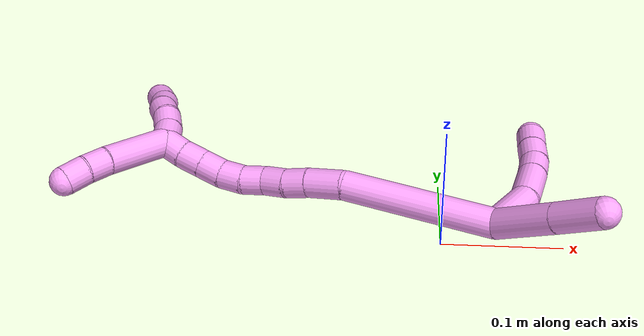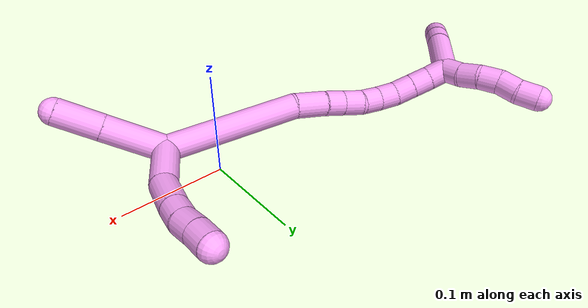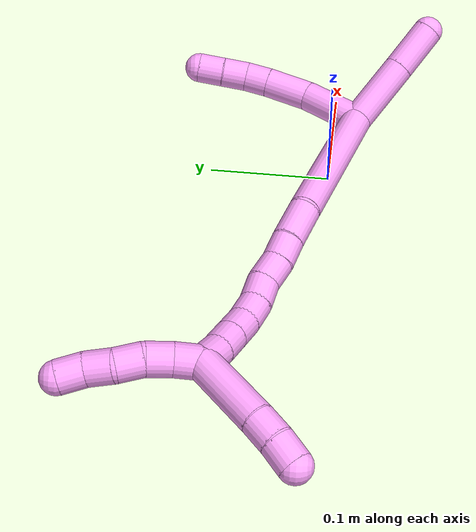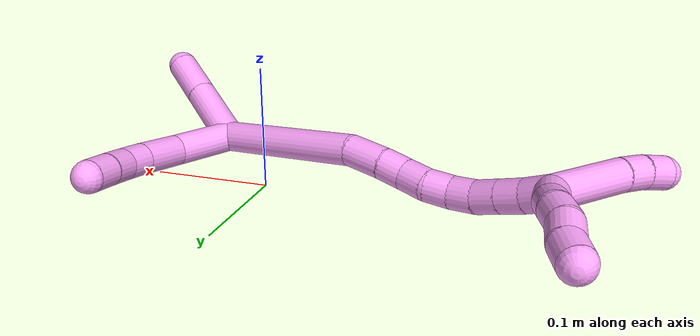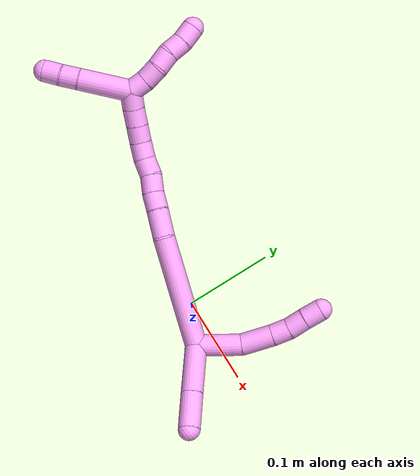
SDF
<sdf version="1.7">
 <world name="default">
  <model name="4">
   <static>0</static>
   <link name="4">
    <collision name="collision-cylinder-e_1_2_8">
     <pose>0.015464 0.000236 0.0204 -0.011568 0.648607 -0.003889</pose>
     <geometry><cylinder><radius>0.0125</radius><length>0.0512</length></cylinder></geometry>
     <surface>
      <friction><ode><mu>1.16</mu><mu2>1.16</mu2><slip1>0</slip1><slip2>0</slip2></ode></friction>
      <contact><ode><kp>1e+06</kp><kd>1</kd><max_vel>0</max_vel><min_depth>0.001</min_depth></ode></contact>
     </surface>
    </collision>
    <visual name="visual-cylinder-e_1_2_8">
     <pose>0.015464 0.000236 0.0204 -0.011568 0.648607 -0.003889</pose>
     <geometry><cylinder><radius>0.0125</radius><length>0.0512</length></cylinder></geometry>
     <material><ambient>1 0.65098 0.996078 1</ambient></material>
    </visual>
    <collision name="collision-cylinder-e_2_8_9">
     <pose>0.037196 -0.001228 0.058074 0.098095 0.3465 0.01718</pose>
     <geometry><cylinder><radius>0.0125</radius><length>0.03691</length></cylinder></geometry>
     <surface>
      <friction><ode><mu>1.16</mu><mu2>1.16</mu2><slip1>0</slip1><slip2>0</slip2></ode></friction>
      <contact><ode><kp>1e+06</kp><kd>1</kd><max_vel>0</max_vel><min_depth>0.001</min_depth></ode></contact>
     </surface>
    </collision>
    <visual name="visual-cylinder-e_2_8_9">
     <pose>0.037196 -0.001228 0.058074 0.098095 0.3465 0.01718</pose>
     <geometry><cylinder><radius>0.0125</radius><length>0.03691</length></cylinder></geometry>
     <material><ambient>1 0.65098 0.996078 1</ambient></material>
    </visual>
    <collision name="collision-cylinder-e_3_9_10">
     <pose>0.046134 -0.003703 0.084975 0.080348 0.269748 0.010909</pose>
     <geometry><cylinder><radius>0.0125</radius><length>0.02004</length></cylinder></geometry>
     <surface>
      <friction><ode><mu>1.16</mu><mu2>1.16</mu2><slip1>0</slip1><slip2>0</slip2></ode></friction>
      <contact><ode><kp>1e+06</kp><kd>1</kd><max_vel>0</max_vel><min_depth>0.001</min_depth></ode></contact>
     </surface>
    </collision>
    <visual name="visual-cylinder-e_3_9_10">
     <pose>0.046134 -0.003703 0.084975 0.080348 0.269748 0.010909</pose>
     <geometry><cylinder><radius>0.0125</radius><length>0.02004</length></cylinder></geometry>
     <material><ambient>1 0.65098 0.996078 1</ambient></material>
    </visual>
    <collision name="collision-cylinder-e_4_10_11">
     <pose>0.049589 -0.005746 0.104989 0.121471 0.074904 0.004557</pose>
     <geometry><cylinder><radius>0.0125</radius><length>0.020988</length></cylinder></geometry>
     <surface>
      <friction><ode><mu>1.16</mu><mu2>1.16</mu2><slip1>0</slip1><slip2>0</slip2></ode></friction>
      <contact><ode><kp>1e+06</kp><kd>1</kd><max_vel>0</max_vel><min_depth>0.001</min_depth></ode></contact>
     </surface>
    </collision>
    <visual name="visual-cylinder-e_4_10_11">
     <pose>0.049589 -0.005746 0.104989 0.121471 0.074904 0.004557</pose>
     <geometry><cylinder><radius>0.0125</radius><length>0.020988</length></cylinder></geometry>
     <material><ambient>1 0.65098 0.996078 1</ambient></material>
    </visual>
    <collision name="collision-cylinder-e_5_11_6">
     <pose>0.051736 -0.007846 0.125685 0.080462 0.130935 0.005278</pose>
     <geometry><cylinder><radius>0.0125</radius><length>0.020862</length></cylinder></geometry>
     <surface>
      <friction><ode><mu>1.16</mu><mu2>1.16</mu2><slip1>0</slip1><slip2>0</slip2></ode></friction>
      <contact><ode><kp>1e+06</kp><kd>1</kd><max_vel>0</max_vel><min_depth>0.001</min_depth></ode></contact>
     </surface>
    </collision>
    <visual name="visual-cylinder-e_5_11_6">
     <pose>0.051736 -0.007846 0.125685 0.080462 0.130935 0.005278</pose>
     <geometry><cylinder><radius>0.0125</radius><length>0.020862</length></cylinder></geometry>
     <material><ambient>1 0.65098 0.996078 1</ambient></material>
    </visual>
    <collision name="collision-cylinder-e_1_2_12">
     <pose>0.018193 -0.014692 -0.017331 2.4384 0.675174 1.52675</pose>
     <geometry><cylinder><radius>0.0125</radius><length>0.058213</length></cylinder></geometry>
     <surface>
      <friction><ode><mu>1.16</mu><mu2>1.16</mu2><slip1>0</slip1><slip2>0</slip2></ode></friction>
      <contact><ode><kp>1e+06</kp><kd>1</kd><max_vel>0</max_vel><min_depth>0.001</min_depth></ode></contact>
     </surface>
    </collision>
    <visual name="visual-cylinder-e_1_2_12">
     <pose>0.018193 -0.014692 -0.017331 2.4384 0.675174 1.52675</pose>
     <geometry><cylinder><radius>0.0125</radius><length>0.058213</length></cylinder></geometry>
     <material><ambient>1 0.65098 0.996078 1</ambient></material>
    </visual>
    <collision name="collision-cylinder-e_2_12_5">
     <pose>0.049465 -0.04011 -0.046926 2.42307 0.676449 1.50531</pose>
     <geometry><cylinder><radius>0.0125</radius><length>0.041787</length></cylinder></geometry>
     <surface>
      <friction><ode><mu>1.16</mu><mu2>1.16</mu2><slip1>0</slip1><slip2>0</slip2></ode></friction>
      <contact><ode><kp>1e+06</kp><kd>1</kd><max_vel>0</max_vel><min_depth>0.001</min_depth></ode></contact>
     </surface>
    </collision>
    <visual name="visual-cylinder-e_2_12_5">
     <pose>0.049465 -0.04011 -0.046926 2.42307 0.676449 1.50531</pose>
     <geometry><cylinder><radius>0.0125</radius><length>0.041787</length></cylinder></geometry>
     <material><ambient>1 0.65098 0.996078 1</ambient></material>
    </visual>
    <collision name="collision-cylinder-e_1_2_13">
     <pose>-0.059309 -0.000814 0.023282 0.034932 -1.19652 -0.023811</pose>
     <geometry><cylinder><radius>0.0125</radius><length>0.127441</length></cylinder></geometry>
     <surface>
      <friction><ode><mu>1.16</mu><mu2>1.16</mu2><slip1>0</slip1><slip2>0</slip2></ode></friction>
      <contact><ode><kp>1e+06</kp><kd>1</kd><max_vel>0</max_vel><min_depth>0.001</min_depth></ode></contact>
     </surface>
    </collision>
    <visual name="visual-cylinder-e_1_2_13">
     <pose>-0.059309 -0.000814 0.023282 0.034932 -1.19652 -0.023811</pose>
     <geometry><cylinder><radius>0.0125</radius><length>0.127441</length></cylinder></geometry>
     <material><ambient>1 0.65098 0.996078 1</ambient></material>
    </visual>
    <collision name="collision-cylinder-e_2_13_14">
     <pose>-0.132594 0.001747 0.052953 -0.485892 -1.09364 0.299484</pose>
     <geometry><cylinder><radius>0.0125</radius><length>0.031466</length></cylinder></geometry>
     <surface>
      <friction><ode><mu>1.16</mu><mu2>1.16</mu2><slip1>0</slip1><slip2>0</slip2></ode></friction>
      <contact><ode><kp>1e+06</kp><kd>1</kd><max_vel>0</max_vel><min_depth>0.001</min_depth></ode></contact>
     </surface>
    </collision>
    <visual name="visual-cylinder-e_2_13_14">
     <pose>-0.132594 0.001747 0.052953 -0.485892 -1.09364 0.299484</pose>
     <geometry><cylinder><radius>0.0125</radius><length>0.031466</length></cylinder></geometry>
     <material><ambient>1 0.65098 0.996078 1</ambient></material>
    </visual>
    <collision name="collision-cylinder-e_3_14_15">
     <pose>-0.155451 0.008125 0.063052 -0.680647 -1.07762 0.417212</pose>
     <geometry><cylinder><radius>0.0125</radius><length>0.020166</length></cylinder></geometry>
     <surface>
      <friction><ode><mu>1.16</mu><mu2>1.16</mu2><slip1>0</slip1><slip2>0</slip2></ode></friction>
      <contact><ode><kp>1e+06</kp><kd>1</kd><max_vel>0</max_vel><min_depth>0.001</min_depth></ode></contact>
     </surface>
    </collision>
    <visual name="visual-cylinder-e_3_14_15">
     <pose>-0.155451 0.008125 0.063052 -0.680647 -1.07762 0.417212</pose>
     <geometry><cylinder><radius>0.0125</radius><length>0.020166</length></cylinder></geometry>
     <material><ambient>1 0.65098 0.996078 1</ambient></material>
    </visual>
    <collision name="collision-cylinder-e_4_15_16">
     <pose>-0.173093 0.013364 0.071996 -0.403592 -0.994714 0.221217</pose>
     <geometry><cylinder><radius>0.0125</radius><length>0.020894</length></cylinder></geometry>
     <surface>
      <friction><ode><mu>1.16</mu><mu2>1.16</mu2><slip1>0</slip1><slip2>0</slip2></ode></friction>
      <contact><ode><kp>1e+06</kp><kd>1</kd><max_vel>0</max_vel><min_depth>0.001</min_depth></ode></contact>
     </surface>
    </collision>
    <visual name="visual-cylinder-e_4_15_16">
     <pose>-0.173093 0.013364 0.071996 -0.403592 -0.994714 0.221217</pose>
     <geometry><cylinder><radius>0.0125</radius><length>0.020894</length></cylinder></geometry>
     <material><ambient>1 0.65098 0.996078 1</ambient></material>
    </visual>
    <collision name="collision-cylinder-e_5_16_17">
     <pose>-0.191314 0.017328 0.079982 -0.560635 -1.23981 0.405341</pose>
     <geometry><cylinder><radius>0.0125</radius><length>0.020007</length></cylinder></geometry>
     <surface>
      <friction><ode><mu>1.16</mu><mu2>1.16</mu2><slip1>0</slip1><slip2>0</slip2></ode></friction>
      <contact><ode><kp>1e+06</kp><kd>1</kd><max_vel>0</max_vel><min_depth>0.001</min_depth></ode></contact>
     </surface>
    </collision>
    <visual name="visual-cylinder-e_5_16_17">
     <pose>-0.191314 0.017328 0.079982 -0.560635 -1.23981 0.405341</pose>
     <geometry><cylinder><radius>0.0125</radius><length>0.020007</length></cylinder></geometry>
     <material><ambient>1 0.65098 0.996078 1</ambient></material>
    </visual>
    <collision name="collision-cylinder-e_6_17_18">
     <pose>-0.209866 0.019113 0.086928 -0.01346 -1.13872 0.008615</pose>
     <geometry><cylinder><radius>0.0125</radius><length>0.020023</length></cylinder></geometry>
     <surface>
      <friction><ode><mu>1.16</mu><mu2>1.16</mu2><slip1>0</slip1><slip2>0</slip2></ode></friction>
      <contact><ode><kp>1e+06</kp><kd>1</kd><max_vel>0</max_vel><min_depth>0.001</min_depth></ode></contact>
     </surface>
    </collision>
    <visual name="visual-cylinder-e_6_17_18">
     <pose>-0.209866 0.019113 0.086928 -0.01346 -1.13872 0.008615</pose>
     <geometry><cylinder><radius>0.0125</radius><length>0.020023</length></cylinder></geometry>
     <material><ambient>1 0.65098 0.996078 1</ambient></material>
    </visual>
    <collision name="collision-cylinder-e_7_18_19">
     <pose>-0.227719 0.017191 0.095521 0.422362 -1.06736 -0.251995</pose>
     <geometry><cylinder><radius>0.0125</radius><length>0.020003</length></cylinder></geometry>
     <surface>
      <friction><ode><mu>1.16</mu><mu2>1.16</mu2><slip1>0</slip1><slip2>0</slip2></ode></friction>
      <contact><ode><kp>1e+06</kp><kd>1</kd><max_vel>0</max_vel><min_depth>0.001</min_depth></ode></contact>
     </surface>
    </collision>
    <visual name="visual-cylinder-e_7_18_19">
     <pose>-0.227719 0.017191 0.095521 0.422362 -1.06736 -0.251995</pose>
     <geometry><cylinder><radius>0.0125</radius><length>0.020003</length></cylinder></geometry>
     <material><ambient>1 0.65098 0.996078 1</ambient></material>
    </visual>
    <collision name="collision-cylinder-e_8_19_20">
     <pose>-0.245237 0.013204 0.10431 0.429331 -1.06713 -0.25617</pose>
     <geometry><cylinder><radius>0.0125</radius><length>0.02</length></cylinder></geometry>
     <surface>
      <friction><ode><mu>1.16</mu><mu2>1.16</mu2><slip1>0</slip1><slip2>0</slip2></ode></friction>
      <contact><ode><kp>1e+06</kp><kd>1</kd><max_vel>0</max_vel><min_depth>0.001</min_depth></ode></contact>
     </surface>
    </collision>
    <visual name="visual-cylinder-e_8_19_20">
     <pose>-0.245237 0.013204 0.10431 0.429331 -1.06713 -0.25617</pose>
     <geometry><cylinder><radius>0.0125</radius><length>0.02</length></cylinder></geometry>
     <material><ambient>1 0.65098 0.996078 1</ambient></material>
    </visual>
    <collision name="collision-cylinder-e_9_20_1">
     <pose>-0.262251 0.008253 0.113515 0.548314 -0.971103 -0.294662</pose>
     <geometry><cylinder><radius>0.0125</radius><length>0.02</length></cylinder></geometry>
     <surface>
      <friction><ode><mu>1.16</mu><mu2>1.16</mu2><slip1>0</slip1><slip2>0</slip2></ode></friction>
      <contact><ode><kp>1e+06</kp><kd>1</kd><max_vel>0</max_vel><min_depth>0.001</min_depth></ode></contact>
     </surface>
    </collision>
    <visual name="visual-cylinder-e_9_20_1">
     <pose>-0.262251 0.008253 0.113515 0.548314 -0.971103 -0.294662</pose>
     <geometry><cylinder><radius>0.0125</radius><length>0.02</length></cylinder></geometry>
     <material><ambient>1 0.65098 0.996078 1</ambient></material>
    </visual>
    <collision name="collision-cylinder-e_1_1_21">
     <pose>-0.293629 0.005373 0.099366 -3.13833 -0.883821 3.1347</pose>
     <geometry><cylinder><radius>0.0125</radius><length>0.059813</length></cylinder></geometry>
     <surface>
      <friction><ode><mu>1.16</mu><mu2>1.16</mu2><slip1>0</slip1><slip2>0</slip2></ode></friction>
      <contact><ode><kp>1e+06</kp><kd>1</kd><max_vel>0</max_vel><min_depth>0.001</min_depth></ode></contact>
     </surface>
    </collision>
    <visual name="visual-cylinder-e_1_1_21">
     <pose>-0.293629 0.005373 0.099366 -3.13833 -0.883821 3.1347</pose>
     <geometry><cylinder><radius>0.0125</radius><length>0.059813</length></cylinder></geometry>
     <material><ambient>1 0.65098 0.996078 1</ambient></material>
    </visual>
    <collision name="collision-cylinder-e_2_21_22">
     <pose>-0.324452 0.006403 0.074046 -2.99043 -0.875364 2.82073</pose>
     <geometry><cylinder><radius>0.0125</radius><length>0.020059</length></cylinder></geometry>
     <surface>
      <friction><ode><mu>1.16</mu><mu2>1.16</mu2><slip1>0</slip1><slip2>0</slip2></ode></friction>
      <contact><ode><kp>1e+06</kp><kd>1</kd><max_vel>0</max_vel><min_depth>0.001</min_depth></ode></contact>
     </surface>
    </collision>
    <visual name="visual-cylinder-e_2_21_22">
     <pose>-0.324452 0.006403 0.074046 -2.99043 -0.875364 2.82073</pose>
     <geometry><cylinder><radius>0.0125</radius><length>0.020059</length></cylinder></geometry>
     <material><ambient>1 0.65098 0.996078 1</ambient></material>
    </visual>
    <collision name="collision-cylinder-e_3_22_4">
     <pose>-0.339908 0.00959 0.061676 -2.78823 -0.879892 2.41652</pose>
     <geometry><cylinder><radius>0.0125</radius><length>0.020128</length></cylinder></geometry>
     <surface>
      <friction><ode><mu>1.16</mu><mu2>1.16</mu2><slip1>0</slip1><slip2>0</slip2></ode></friction>
      <contact><ode><kp>1e+06</kp><kd>1</kd><max_vel>0</max_vel><min_depth>0.001</min_depth></ode></contact>
     </surface>
    </collision>
    <visual name="visual-cylinder-e_3_22_4">
     <pose>-0.339908 0.00959 0.061676 -2.78823 -0.879892 2.41652</pose>
     <geometry><cylinder><radius>0.0125</radius><length>0.020128</length></cylinder></geometry>
     <material><ambient>1 0.65098 0.996078 1</ambient></material>
    </visual>
    <collision name="collision-cylinder-e_1_1_23">
     <pose>-0.270062 0.004835 0.128311 0.047694 0.044385 0.001059</pose>
     <geometry><cylinder><radius>0.0125</radius><length>0.02</length></cylinder></geometry>
     <surface>
      <friction><ode><mu>1.16</mu><mu2>1.16</mu2><slip1>0</slip1><slip2>0</slip2></ode></friction>
      <contact><ode><kp>1e+06</kp><kd>1</kd><max_vel>0</max_vel><min_depth>0.001</min_depth></ode></contact>
     </surface>
    </collision>
    <visual name="visual-cylinder-e_1_1_23">
     <pose>-0.270062 0.004835 0.128311 0.047694 0.044385 0.001059</pose>
     <geometry><cylinder><radius>0.0125</radius><length>0.02</length></cylinder></geometry>
     <material><ambient>1 0.65098 0.996078 1</ambient></material>
    </visual>
    <collision name="collision-cylinder-e_2_23_24">
     <pose>-0.271099 0.003035 0.14809 0.134284 -0.148612 -0.010011</pose>
     <geometry><cylinder><radius>0.0125</radius><length>0.02</length></cylinder></geometry>
     <surface>
      <friction><ode><mu>1.16</mu><mu2>1.16</mu2><slip1>0</slip1><slip2>0</slip2></ode></friction>
      <contact><ode><kp>1e+06</kp><kd>1</kd><max_vel>0</max_vel><min_depth>0.001</min_depth></ode></contact>
     </surface>
    </collision>
    <visual name="visual-cylinder-e_2_23_24">
     <pose>-0.271099 0.003035 0.14809 0.134284 -0.148612 -0.010011</pose>
     <geometry><cylinder><radius>0.0125</radius><length>0.02</length></cylinder></geometry>
     <material><ambient>1 0.65098 0.996078 1</ambient></material>
    </visual>
    <collision name="collision-cylinder-e_3_24_25">
     <pose>-0.275215 0.00251 0.167505 -0.082922 -0.266627 0.011127</pose>
     <geometry><cylinder><radius>0.0125</radius><length>0.02</length></cylinder></geometry>
     <surface>
      <friction><ode><mu>1.16</mu><mu2>1.16</mu2><slip1>0</slip1><slip2>0</slip2></ode></friction>
      <contact><ode><kp>1e+06</kp><kd>1</kd><max_vel>0</max_vel><min_depth>0.001</min_depth></ode></contact>
     </surface>
    </collision>
    <visual name="visual-cylinder-e_3_24_25">
     <pose>-0.275215 0.00251 0.167505 -0.082922 -0.266627 0.011127</pose>
     <geometry><cylinder><radius>0.0125</radius><length>0.02</length></cylinder></geometry>
     <material><ambient>1 0.65098 0.996078 1</ambient></material>
    </visual>
    <collision name="collision-cylinder-e_4_25_26">
     <pose>-0.278005 0.005497 0.186874 -0.220704 -0.015518 0.001719</pose>
     <geometry><cylinder><radius>0.0125</radius><length>0.02</length></cylinder></geometry>
     <surface>
      <friction><ode><mu>1.16</mu><mu2>1.16</mu2><slip1>0</slip1><slip2>0</slip2></ode></friction>
      <contact><ode><kp>1e+06</kp><kd>1</kd><max_vel>0</max_vel><min_depth>0.001</min_depth></ode></contact>
     </surface>
    </collision>
    <visual name="visual-cylinder-e_4_25_26">
     <pose>-0.278005 0.005497 0.186874 -0.220704 -0.015518 0.001719</pose>
     <geometry><cylinder><radius>0.0125</radius><length>0.02</length></cylinder></geometry>
     <material><ambient>1 0.65098 0.996078 1</ambient></material>
    </visual>
    <collision name="collision-cylinder-e_5_26_3">
     <pose>-0.280755 0.009443 0.206127 -0.182892 -0.262535 0.024213</pose>
     <geometry><cylinder><radius>0.0125</radius><length>0.02</length></cylinder></geometry>
     <surface>
      <friction><ode><mu>1.16</mu><mu2>1.16</mu2><slip1>0</slip1><slip2>0</slip2></ode></friction>
      <contact><ode><kp>1e+06</kp><kd>1</kd><max_vel>0</max_vel><min_depth>0.001</min_depth></ode></contact>
     </surface>
    </collision>
    <visual name="visual-cylinder-e_5_26_3">
     <pose>-0.280755 0.009443 0.206127 -0.182892 -0.262535 0.024213</pose>
     <geometry><cylinder><radius>0.0125</radius><length>0.02</length></cylinder></geometry>
     <material><ambient>1 0.65098 0.996078 1</ambient></material>
    </visual>
    <collision name="collision-sphere-3">
     <pose>-0.283351 0.011199 0.215623 0 -0 0</pose>
     <geometry><sphere><radius>0.0125</radius></sphere></geometry>
     <surface>
      <friction><ode><mu>1.16</mu><mu2>1.16</mu2><slip1>0</slip1><slip2>0</slip2></ode></friction>
      <contact><ode><kp>1e+06</kp><kd>1</kd><max_vel>0</max_vel><min_depth>0.001</min_depth></ode></contact>
     </surface>
    </collision>
    <visual name="visual-sphere-3">
     <pose>-0.283351 0.011199 0.215623 0 -0 0</pose>
     <geometry><sphere><radius>0.0125</radius></sphere></geometry>
     <material><ambient>1 0.65098 0.996078 1</ambient></material>
    </visual>
    <collision name="collision-sphere-26">
     <pose>-0.27816 0.007686 0.196631 0 -0 0</pose>
     <geometry><sphere><radius>0.0125</radius></sphere></geometry>
     <surface>
      <friction><ode><mu>1.16</mu><mu2>1.16</mu2><slip1>0</slip1><slip2>0</slip2></ode></friction>
      <contact><ode><kp>1e+06</kp><kd>1</kd><max_vel>0</max_vel><min_depth>0.001</min_depth></ode></contact>
     </surface>
    </collision>
    <visual name="visual-sphere-26">
     <pose>-0.27816 0.007686 0.196631 0 -0 0</pose>
     <geometry><sphere><radius>0.0125</radius></sphere></geometry>
     <material><ambient>1 0.65098 0.996078 1</ambient></material>
    </visual>
    <collision name="collision-sphere-25">
     <pose>-0.27785 0.003309 0.177118 0 -0 0</pose>
     <geometry><sphere><radius>0.0125</radius></sphere></geometry>
     <surface>
      <friction><ode><mu>1.16</mu><mu2>1.16</mu2><slip1>0</slip1><slip2>0</slip2></ode></friction>
      <contact><ode><kp>1e+06</kp><kd>1</kd><max_vel>0</max_vel><min_depth>0.001</min_depth></ode></contact>
     </surface>
    </collision>
    <visual name="visual-sphere-25">
     <pose>-0.27785 0.003309 0.177118 0 -0 0</pose>
     <geometry><sphere><radius>0.0125</radius></sphere></geometry>
     <material><ambient>1 0.65098 0.996078 1</ambient></material>
    </visual>
    <collision name="collision-sphere-24">
     <pose>-0.27258 0.001711 0.157891 0 -0 0</pose>
     <geometry><sphere><radius>0.0125</radius></sphere></geometry>
     <surface>
      <friction><ode><mu>1.16</mu><mu2>1.16</mu2><slip1>0</slip1><slip2>0</slip2></ode></friction>
      <contact><ode><kp>1e+06</kp><kd>1</kd><max_vel>0</max_vel><min_depth>0.001</min_depth></ode></contact>
     </surface>
    </collision>
    <visual name="visual-sphere-24">
     <pose>-0.27258 0.001711 0.157891 0 -0 0</pose>
     <geometry><sphere><radius>0.0125</radius></sphere></geometry>
     <material><ambient>1 0.65098 0.996078 1</ambient></material>
    </visual>
    <collision name="collision-sphere-23">
     <pose>-0.269619 0.004359 0.13829 0 -0 0</pose>
     <geometry><sphere><radius>0.0125</radius></sphere></geometry>
     <surface>
      <friction><ode><mu>1.16</mu><mu2>1.16</mu2><slip1>0</slip1><slip2>0</slip2></ode></friction>
      <contact><ode><kp>1e+06</kp><kd>1</kd><max_vel>0</max_vel><min_depth>0.001</min_depth></ode></contact>
     </surface>
    </collision>
    <visual name="visual-sphere-23">
     <pose>-0.269619 0.004359 0.13829 0 -0 0</pose>
     <geometry><sphere><radius>0.0125</radius></sphere></geometry>
     <material><ambient>1 0.65098 0.996078 1</ambient></material>
    </visual>
    <collision name="collision-sphere-4">
     <pose>-0.347665 0.011809 0.055659 0 -0 0</pose>
     <geometry><sphere><radius>0.0125</radius></sphere></geometry>
     <surface>
      <friction><ode><mu>1.16</mu><mu2>1.16</mu2><slip1>0</slip1><slip2>0</slip2></ode></friction>
      <contact><ode><kp>1e+06</kp><kd>1</kd><max_vel>0</max_vel><min_depth>0.001</min_depth></ode></contact>
     </surface>
    </collision>
    <visual name="visual-sphere-4">
     <pose>-0.347665 0.011809 0.055659 0 -0 0</pose>
     <geometry><sphere><radius>0.0125</radius></sphere></geometry>
     <material><ambient>1 0.65098 0.996078 1</ambient></material>
    </visual>
    <collision name="collision-sphere-22">
     <pose>-0.332152 0.00737 0.067693 0 -0 0</pose>
     <geometry><sphere><radius>0.0125</radius></sphere></geometry>
     <surface>
      <friction><ode><mu>1.16</mu><mu2>1.16</mu2><slip1>0</slip1><slip2>0</slip2></ode></friction>
      <contact><ode><kp>1e+06</kp><kd>1</kd><max_vel>0</max_vel><min_depth>0.001</min_depth></ode></contact>
     </surface>
    </collision>
    <visual name="visual-sphere-22">
     <pose>-0.332152 0.00737 0.067693 0 -0 0</pose>
     <geometry><sphere><radius>0.0125</radius></sphere></geometry>
     <material><ambient>1 0.65098 0.996078 1</ambient></material>
    </visual>
    <collision name="collision-sphere-21">
     <pose>-0.316752 0.005435 0.080399 0 -0 0</pose>
     <geometry><sphere><radius>0.0125</radius></sphere></geometry>
     <surface>
      <friction><ode><mu>1.16</mu><mu2>1.16</mu2><slip1>0</slip1><slip2>0</slip2></ode></friction>
      <contact><ode><kp>1e+06</kp><kd>1</kd><max_vel>0</max_vel><min_depth>0.001</min_depth></ode></contact>
     </surface>
    </collision>
    <visual name="visual-sphere-21">
     <pose>-0.316752 0.005435 0.080399 0 -0 0</pose>
     <geometry><sphere><radius>0.0125</radius></sphere></geometry>
     <material><ambient>1 0.65098 0.996078 1</ambient></material>
    </visual>
    <collision name="collision-sphere-1">
     <pose>-0.270506 0.005311 0.118332 0 -0 0</pose>
     <geometry><sphere><radius>0.0125</radius></sphere></geometry>
     <surface>
      <friction><ode><mu>1.16</mu><mu2>1.16</mu2><slip1>0</slip1><slip2>0</slip2></ode></friction>
      <contact><ode><kp>1e+06</kp><kd>1</kd><max_vel>0</max_vel><min_depth>0.001</min_depth></ode></contact>
     </surface>
    </collision>
    <visual name="visual-sphere-1">
     <pose>-0.270506 0.005311 0.118332 0 -0 0</pose>
     <geometry><sphere><radius>0.0125</radius></sphere></geometry>
     <material><ambient>1 0.65098 0.996078 1</ambient></material>
    </visual>
    <collision name="collision-sphere-6">
     <pose>0.053098 -0.008677 0.135994 0 -0 0</pose>
     <geometry><sphere><radius>0.0125</radius></sphere></geometry>
     <surface>
      <friction><ode><mu>1.16</mu><mu2>1.16</mu2><slip1>0</slip1><slip2>0</slip2></ode></friction>
      <contact><ode><kp>1e+06</kp><kd>1</kd><max_vel>0</max_vel><min_depth>0.001</min_depth></ode></contact>
     </surface>
    </collision>
    <visual name="visual-sphere-6">
     <pose>0.053098 -0.008677 0.135994 0 -0 0</pose>
     <geometry><sphere><radius>0.0125</radius></sphere></geometry>
     <material><ambient>1 0.65098 0.996078 1</ambient></material>
    </visual>
    <collision name="collision-sphere-11">
     <pose>0.050374 -0.007014 0.115377 0 -0 0</pose>
     <geometry><sphere><radius>0.0125</radius></sphere></geometry>
     <surface>
      <friction><ode><mu>1.16</mu><mu2>1.16</mu2><slip1>0</slip1><slip2>0</slip2></ode></friction>
      <contact><ode><kp>1e+06</kp><kd>1</kd><max_vel>0</max_vel><min_depth>0.001</min_depth></ode></contact>
     </surface>
    </collision>
    <visual name="visual-sphere-11">
     <pose>0.050374 -0.007014 0.115377 0 -0 0</pose>
     <geometry><sphere><radius>0.0125</radius></sphere></geometry>
     <material><ambient>1 0.65098 0.996078 1</ambient></material>
    </visual>
    <collision name="collision-sphere-10">
     <pose>0.048804 -0.004478 0.094602 0 -0 0</pose>
     <geometry><sphere><radius>0.0125</radius></sphere></geometry>
     <surface>
      <friction><ode><mu>1.16</mu><mu2>1.16</mu2><slip1>0</slip1><slip2>0</slip2></ode></friction>
      <contact><ode><kp>1e+06</kp><kd>1</kd><max_vel>0</max_vel><min_depth>0.001</min_depth></ode></contact>
     </surface>
    </collision>
    <visual name="visual-sphere-10">
     <pose>0.048804 -0.004478 0.094602 0 -0 0</pose>
     <geometry><sphere><radius>0.0125</radius></sphere></geometry>
     <material><ambient>1 0.65098 0.996078 1</ambient></material>
    </visual>
    <collision name="collision-sphere-9">
     <pose>0.043463 -0.002928 0.075349 0 -0 0</pose>
     <geometry><sphere><radius>0.0125</radius></sphere></geometry>
     <surface>
      <friction><ode><mu>1.16</mu><mu2>1.16</mu2><slip1>0</slip1><slip2>0</slip2></ode></friction>
      <contact><ode><kp>1e+06</kp><kd>1</kd><max_vel>0</max_vel><min_depth>0.001</min_depth></ode></contact>
     </surface>
    </collision>
    <visual name="visual-sphere-9">
     <pose>0.043463 -0.002928 0.075349 0 -0 0</pose>
     <geometry><sphere><radius>0.0125</radius></sphere></geometry>
     <material><ambient>1 0.65098 0.996078 1</ambient></material>
    </visual>
    <collision name="collision-sphere-2">
     <geometry><sphere><radius>0.0125</radius></sphere></geometry>
     <surface>
      <friction><ode><mu>1.16</mu><mu2>1.16</mu2><slip1>0</slip1><slip2>0</slip2></ode></friction>
      <contact><ode><kp>1e+06</kp><kd>1</kd><max_vel>0</max_vel><min_depth>0.001</min_depth></ode></contact>
     </surface>
    </collision>
    <visual name="visual-sphere-2">
     <geometry><sphere><radius>0.0125</radius></sphere></geometry>
     <material><ambient>1 0.65098 0.996078 1</ambient></material>
    </visual>
    <collision name="collision-sphere-19">
     <pose>-0.236479 0.015213 0.099922 0 -0 0</pose>
     <geometry><sphere><radius>0.0125</radius></sphere></geometry>
     <surface>
      <friction><ode><mu>1.16</mu><mu2>1.16</mu2><slip1>0</slip1><slip2>0</slip2></ode></friction>
      <contact><ode><kp>1e+06</kp><kd>1</kd><max_vel>0</max_vel><min_depth>0.001</min_depth></ode></contact>
     </surface>
    </collision>
    <visual name="visual-sphere-19">
     <pose>-0.236479 0.015213 0.099922 0 -0 0</pose>
     <geometry><sphere><radius>0.0125</radius></sphere></geometry>
     <material><ambient>1 0.65098 0.996078 1</ambient></material>
    </visual>
    <collision name="collision-sphere-8">
     <pose>0.030928 0.000472 0.0408 0 -0 0</pose>
     <geometry><sphere><radius>0.0125</radius></sphere></geometry>
     <surface>
      <friction><ode><mu>1.16</mu><mu2>1.16</mu2><slip1>0</slip1><slip2>0</slip2></ode></friction>
      <contact><ode><kp>1e+06</kp><kd>1</kd><max_vel>0</max_vel><min_depth>0.001</min_depth></ode></contact>
     </surface>
    </collision>
    <visual name="visual-sphere-8">
     <pose>0.030928 0.000472 0.0408 0 -0 0</pose>
     <geometry><sphere><radius>0.0125</radius></sphere></geometry>
     <material><ambient>1 0.65098 0.996078 1</ambient></material>
    </visual>
    <collision name="collision-sphere-12">
     <pose>0.036385 -0.029385 -0.034662 0 -0 0</pose>
     <geometry><sphere><radius>0.0125</radius></sphere></geometry>
     <surface>
      <friction><ode><mu>1.16</mu><mu2>1.16</mu2><slip1>0</slip1><slip2>0</slip2></ode></friction>
      <contact><ode><kp>1e+06</kp><kd>1</kd><max_vel>0</max_vel><min_depth>0.001</min_depth></ode></contact>
     </surface>
    </collision>
    <visual name="visual-sphere-12">
     <pose>0.036385 -0.029385 -0.034662 0 -0 0</pose>
     <geometry><sphere><radius>0.0125</radius></sphere></geometry>
     <material><ambient>1 0.65098 0.996078 1</ambient></material>
    </visual>
    <collision name="collision-sphere-5">
     <pose>0.062545 -0.050835 -0.059191 0 -0 0</pose>
     <geometry><sphere><radius>0.0125</radius></sphere></geometry>
     <surface>
      <friction><ode><mu>1.16</mu><mu2>1.16</mu2><slip1>0</slip1><slip2>0</slip2></ode></friction>
      <contact><ode><kp>1e+06</kp><kd>1</kd><max_vel>0</max_vel><min_depth>0.001</min_depth></ode></contact>
     </surface>
    </collision>
    <visual name="visual-sphere-5">
     <pose>0.062545 -0.050835 -0.059191 0 -0 0</pose>
     <geometry><sphere><radius>0.0125</radius></sphere></geometry>
     <material><ambient>1 0.65098 0.996078 1</ambient></material>
    </visual>
    <collision name="collision-sphere-13">
     <pose>-0.118618 -0.001627 0.046564 0 -0 0</pose>
     <geometry><sphere><radius>0.0125</radius></sphere></geometry>
     <surface>
      <friction><ode><mu>1.16</mu><mu2>1.16</mu2><slip1>0</slip1><slip2>0</slip2></ode></friction>
      <contact><ode><kp>1e+06</kp><kd>1</kd><max_vel>0</max_vel><min_depth>0.001</min_depth></ode></contact>
     </surface>
    </collision>
    <visual name="visual-sphere-13">
     <pose>-0.118618 -0.001627 0.046564 0 -0 0</pose>
     <geometry><sphere><radius>0.0125</radius></sphere></geometry>
     <material><ambient>1 0.65098 0.996078 1</ambient></material>
    </visual>
    <collision name="collision-sphere-14">
     <pose>-0.146569 0.005121 0.059342 0 -0 0</pose>
     <geometry><sphere><radius>0.0125</radius></sphere></geometry>
     <surface>
      <friction><ode><mu>1.16</mu><mu2>1.16</mu2><slip1>0</slip1><slip2>0</slip2></ode></friction>
      <contact><ode><kp>1e+06</kp><kd>1</kd><max_vel>0</max_vel><min_depth>0.001</min_depth></ode></contact>
     </surface>
    </collision>
    <visual name="visual-sphere-14">
     <pose>-0.146569 0.005121 0.059342 0 -0 0</pose>
     <geometry><sphere><radius>0.0125</radius></sphere></geometry>
     <material><ambient>1 0.65098 0.996078 1</ambient></material>
    </visual>
    <collision name="collision-sphere-15">
     <pose>-0.164332 0.011129 0.066762 0 -0 0</pose>
     <geometry><sphere><radius>0.0125</radius></sphere></geometry>
     <surface>
      <friction><ode><mu>1.16</mu><mu2>1.16</mu2><slip1>0</slip1><slip2>0</slip2></ode></friction>
      <contact><ode><kp>1e+06</kp><kd>1</kd><max_vel>0</max_vel><min_depth>0.001</min_depth></ode></contact>
     </surface>
    </collision>
    <visual name="visual-sphere-15">
     <pose>-0.164332 0.011129 0.066762 0 -0 0</pose>
     <geometry><sphere><radius>0.0125</radius></sphere></geometry>
     <material><ambient>1 0.65098 0.996078 1</ambient></material>
    </visual>
    <collision name="collision-sphere-16">
     <pose>-0.181854 0.015599 0.077229 0 -0 0</pose>
     <geometry><sphere><radius>0.0125</radius></sphere></geometry>
     <surface>
      <friction><ode><mu>1.16</mu><mu2>1.16</mu2><slip1>0</slip1><slip2>0</slip2></ode></friction>
      <contact><ode><kp>1e+06</kp><kd>1</kd><max_vel>0</max_vel><min_depth>0.001</min_depth></ode></contact>
     </surface>
    </collision>
    <visual name="visual-sphere-16">
     <pose>-0.181854 0.015599 0.077229 0 -0 0</pose>
     <geometry><sphere><radius>0.0125</radius></sphere></geometry>
     <material><ambient>1 0.65098 0.996078 1</ambient></material>
    </visual>
    <collision name="collision-sphere-17">
     <pose>-0.200775 0.019056 0.082736 0 -0 0</pose>
     <geometry><sphere><radius>0.0125</radius></sphere></geometry>
     <surface>
      <friction><ode><mu>1.16</mu><mu2>1.16</mu2><slip1>0</slip1><slip2>0</slip2></ode></friction>
      <contact><ode><kp>1e+06</kp><kd>1</kd><max_vel>0</max_vel><min_depth>0.001</min_depth></ode></contact>
     </surface>
    </collision>
    <visual name="visual-sphere-17">
     <pose>-0.200775 0.019056 0.082736 0 -0 0</pose>
     <geometry><sphere><radius>0.0125</radius></sphere></geometry>
     <material><ambient>1 0.65098 0.996078 1</ambient></material>
    </visual>
    <collision name="collision-sphere-18">
     <pose>-0.218958 0.019169 0.09112 0 -0 0</pose>
     <geometry><sphere><radius>0.0125</radius></sphere></geometry>
     <surface>
      <friction><ode><mu>1.16</mu><mu2>1.16</mu2><slip1>0</slip1><slip2>0</slip2></ode></friction>
      <contact><ode><kp>1e+06</kp><kd>1</kd><max_vel>0</max_vel><min_depth>0.001</min_depth></ode></contact>
     </surface>
    </collision>
    <visual name="visual-sphere-18">
     <pose>-0.218958 0.019169 0.09112 0 -0 0</pose>
     <geometry><sphere><radius>0.0125</radius></sphere></geometry>
     <material><ambient>1 0.65098 0.996078 1</ambient></material>
    </visual>
    <collision name="collision-sphere-20">
     <pose>-0.253996 0.011195 0.108699 0 -0 0</pose>
     <geometry><sphere><radius>0.0125</radius></sphere></geometry>
     <surface>
      <friction><ode><mu>1.16</mu><mu2>1.16</mu2><slip1>0</slip1><slip2>0</slip2></ode></friction>
      <contact><ode><kp>1e+06</kp><kd>1</kd><max_vel>0</max_vel><min_depth>0.001</min_depth></ode></contact>
     </surface>
    </collision>
    <visual name="visual-sphere-20">
     <pose>-0.253996 0.011195 0.108699 0 -0 0</pose>
     <geometry><sphere><radius>0.0125</radius></sphere></geometry>
     <material><ambient>1 0.65098 0.996078 1</ambient></material>
    </visual>
    <inertial>
     <pose>-0.121729 0.000164 0.065563 0 -0 0</pose>
     <mass>0.75</mass>
     <inertia>
      <ixx>8.7e-05</ixx>
      <ixy>0</ixy>
      <ixz>0</ixz>
      <iyy>0.000272</iyy>
      <iyz>0</iyz>
      <izz>0.000202</izz>
     </inertia>
    </inertial>
   </link>
   <pose>0.041577 -0.020017 0.032615 -1.5216 0.068845 0.10422</pose>
  </model>
 </world>
</sdf>
